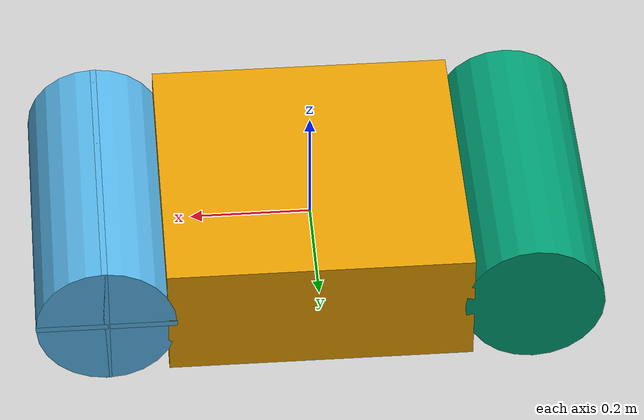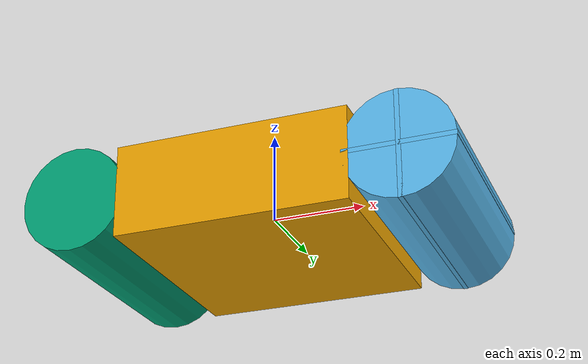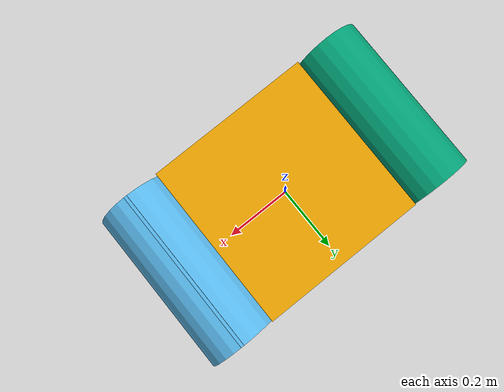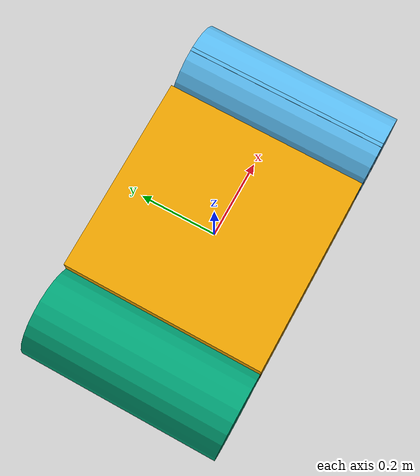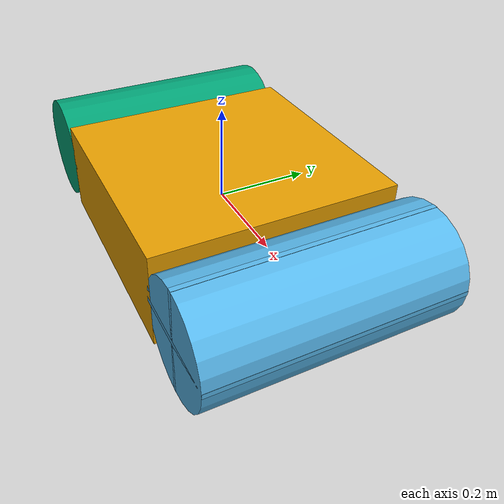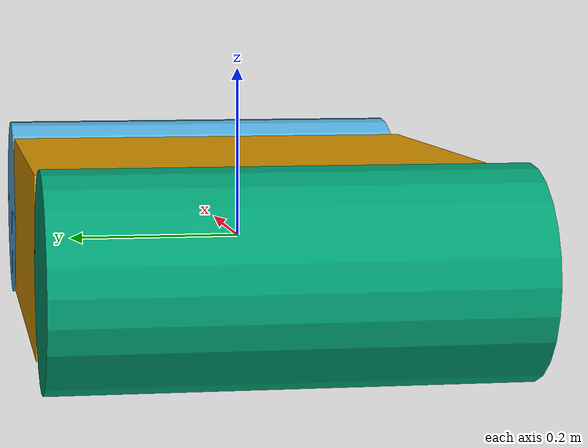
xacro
<robot name="example_track" xmlns:xacro="http://www.ros.org/wiki/xacro">

    <!-- URDF file for ROS 2 tools and Gazebo examples.                              -->
    <!-- We define here;                                                             -->
    <!--     * a body to be wrapped by the track                                     -->
    <!--     * a sprocket to drive the track                                         -->
    <!--     * an axle and actuator for the sprocket                                 -->
    <!--     * an idler wheel on the other side of the sprocket                      -->
    <!-- Other entities specialized for Gazebo are defined in *_gazebo.urdf.xacro .  -->

    <xacro:macro name="make_box_inertia" params="mass size_x size_y size_z">
        <inertial>
            <mass value="${mass}" />
            <inertia ixx="${mass * (size_y * size_y + size_z * size_z) / 12}" ixy="0" ixz="0" iyy="${mass * (size_z * size_z + size_x * size_x) / 12}" iyz="0" izz="${mass * (size_x * size_x + size_y * size_y) / 12}" />
        </inertial>
    </xacro:macro>

    <xacro:macro name="make_wheel_inertia" params="mass radius length">
        <inertial>
            <mass value="${mass}" />
            <!-- assuming axis of cylinder is y, not z -->
            <inertia ixx="${mass * (radius * radius / 4 + length * length / 12)}" ixy="0" ixz="0" iyy="${mass * radius * radius / 2}" iyz="0" izz="${mass * (radius * radius / 4 + length * length / 12)}" />
        </inertial>
    </xacro:macro>

    <xacro:property name="wheel_radius" value="0.115" />
    <xacro:property name="wheel_width" value="0.51" />

    <!-- body to be wrapped by the track -->

    <link name="body">
        <xacro:make_box_inertia mass="1" size_x="0.5" size_y="0.51" size_z="0.2" />

        <visual>
            <geometry>
                <box size="0.5 0.51 0.2" />
            </geometry>
        </visual>

        <collision>
            <geometry>
                <box size="0.51 0.5 0.2" />
            </geometry>
        </collision>
    </link>

    <!-- sprocket driving the track -->

    <link name="sprocket">
        <xacro:make_wheel_inertia mass="0.2" radius="${wheel_radius}" length="${wheel_width}" />

        <visual>
            <origin xyz="0 0 0" rpy="${pi / 2} 0 0" />
            <geometry>
                <cylinder radius="${wheel_radius}" length="${wheel_width}" />
            </geometry>
        </visual>
        <visual>
            <geometry>
                <box size="0.01 ${wheel_width} ${2 * wheel_radius}" />
            </geometry>
        </visual>
        <visual>
            <geometry>
                <box size="${2 * wheel_radius} ${wheel_width} 0.01" />
            </geometry>
        </visual>

        <collision>
            <origin xyz="0 0 0" rpy="${pi / 2} 0 0" />
            <geometry>
                <cylinder radius="${wheel_radius}" length="${wheel_width}" />
            </geometry>
        </collision>
    </link>

    <joint name="sprocket_axle" type="continuous">
        <origin xyz="0.35 0 0" rpy="0 0 0" />
        <parent link="body" />
        <child link="sprocket" />
        <axis xyz="0 1 0" />
    </joint>

    <transmission name="sprocket_transmission">
        <type>transmission_interface/SimpleTransmission</type>
        <joint name="sprocket_axle">
            <hardwareInterface>hardware_interface/VelocityJointInterface</hardwareInterface>
        </joint>
        <actuator name="sprocket_actuator">
            <mechanicalReduction>1</mechanicalReduction>
        </actuator>
    </transmission>

    <!-- idler on the other side of the sprocket -->

    <link name="idler">
        <xacro:make_wheel_inertia mass="0.2" radius="${wheel_radius}" length="${wheel_width}" />

        <visual>
            <origin xyz="0 0 0" rpy="${pi / 2} 0 0" />
            <geometry>
                <cylinder radius="${wheel_radius}" length="${wheel_width}" />
            </geometry>
        </visual>

        <collision>
            <origin xyz="0 0 0" rpy="${pi / 2} 0 0" />
            <geometry>
                <cylinder radius="${wheel_radius}" length="${wheel_width}" />
            </geometry>
        </collision>
    </link>

    <joint name="idler_axle" type="fixed">
        <origin xyz="-0.35 0 0" rpy="0 0 0" />
        <parent link="body" />
        <child link="idler" />
    </joint>

</robot>
